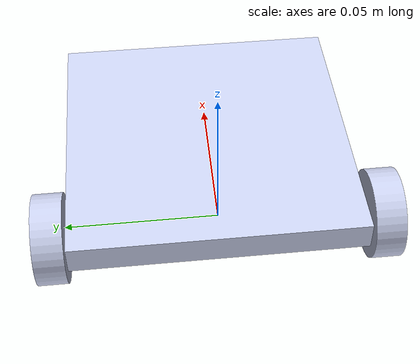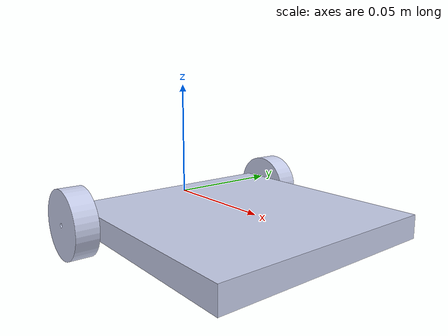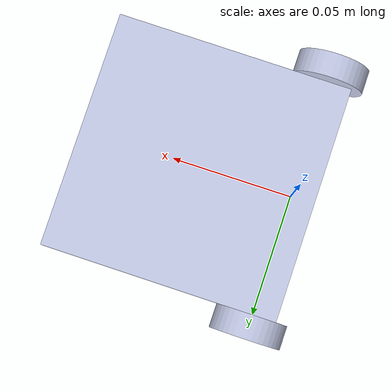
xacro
<?xml version='1.0'?>
<robot
  name="t3" xmlns:xacro="http://www.ros.org/wiki/xacro">

  <xacro:include filename="$(find t3)/robots/t3.gazebo" />

  <link
    name="base_link">
    <inertial>
      <origin
        xyz="0.040126 1.5266E-16 -0.005"
        rpy="0 0 0" />
      <mass
        value="0.099686" />
      <inertia
        ixx="8.3905E-05"
        ixy="-2.8195E-21"
        ixz="1.6628E-21"
        iyy="8.3662E-05"
        iyz="2.873E-19"
        izz="0.0001659" />
    </inertial>
    <visual>
      <origin
        xyz="0 0 0"
        rpy="0 0 0" />
      <geometry>
        <mesh
          filename="package://t3/meshes/base_link.STL" />
      </geometry>
      <material
        name="">
        <color
          rgba="0.79216 0.81961 0.93333 1" />
      </material>
    </visual>
    <collision>
      <origin
        xyz="0 0 0"
        rpy="0 0 0" />
      <geometry>
        <mesh
          filename="package://t3/meshes/base_link.STL" />
      </geometry>
    </collision>
  </link>
  <link
    name="l_whe">
    <inertial>
      <origin
        xyz="-2.0817E-17 -0.005 6.9389E-18"
        rpy="0 0 0" />
      <mass
        value="0.0070372" />
      <inertia
        ixx="4.5624E-07"
        ixy="-1.029E-39"
        ixz="-1.1998E-43"
        iyy="7.952E-07"
        iyz="-2.8951E-39"
        izz="4.5624E-07" />
    </inertial>
    <visual>
      <origin
        xyz="0 0 0"
        rpy="0 0 0" />
      <geometry>
        <mesh
          filename="package://t3/meshes/l_whe.STL" />
      </geometry>
      <material
        name="">
        <color
          rgba="0.79216 0.81961 0.93333 1" />
      </material>
    </visual>
    <collision>
      <origin
        xyz="0 0 0"
        rpy="0 0 0" />
      <geometry>
        <mesh
          filename="package://t3/meshes/l_whe.STL" />
      </geometry>
    </collision>
  </link>
  <joint
    name="l_jo"
    type="continuous">
    <origin
      xyz="0 -0.06 -0.005"
      rpy="0 0 3.1416" />
    <parent
      link="base_link" />
    <child
      link="l_whe" />
    <axis
      xyz="0 1 0" />
  </joint>
  <link
    name="r_whe">
    <inertial>
      <origin
        xyz="6.9389E-18 0.005 -6.9389E-18"
        rpy="0 0 0" />
      <mass
        value="0.0070372" />
      <inertia
        ixx="4.5624E-07"
        ixy="-1.029E-39"
        ixz="-1.1998E-43"
        iyy="7.952E-07"
        iyz="-1.1479E-39"
        izz="4.5624E-07" />
    </inertial>
    <visual>
      <origin
        xyz="0 0 0"
        rpy="0 0 0" />
      <geometry>
        <mesh
          filename="package://t3/meshes/r_whe.STL" />
      </geometry>
      <material
        name="">
        <color
          rgba="0.79216 0.81961 0.93333 1" />
      </material>
    </visual>
    <collision>
      <origin
        xyz="0 0 0"
        rpy="0 0 0" />
      <geometry>
        <mesh
          filename="package://t3/meshes/r_whe.STL" />
      </geometry>
    </collision>
  </link>
  <joint
    name="r_jo"
    type="continuous">
    <origin
      xyz="0 0.06 -0.005"
      rpy="0 0 3.1416" />
    <parent
      link="base_link" />
    <child
      link="r_whe" />
    <axis
      xyz="0 1 0" />
  </joint>
</robot>
